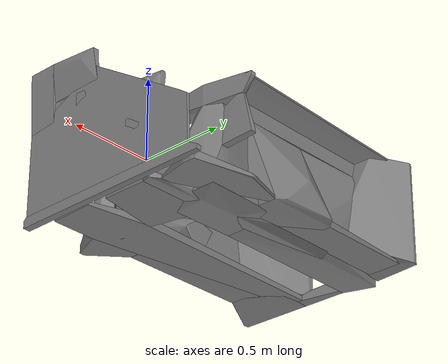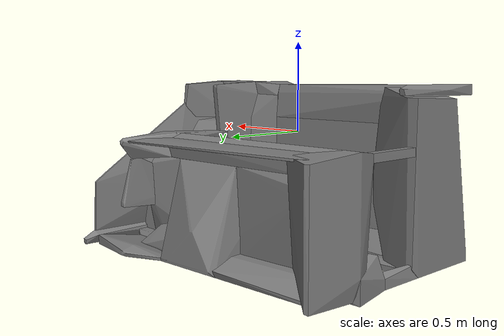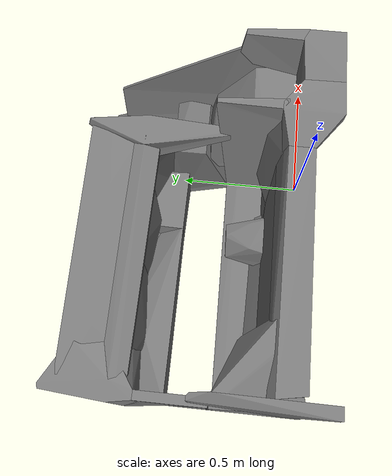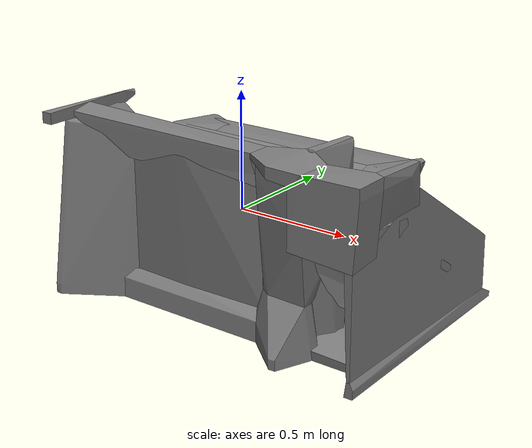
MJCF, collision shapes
<mujoco model="normalized_model">
  <default>
    <default class="visual">
      <geom group="2" type="mesh" contype="0" conaffinity="0"/>
    </default>
    <default class="collision">
      <geom group="3" type="mesh"/>
    </default>
  </default>
  <asset>
    <texture type="2d" name="texture" file="texture.png"/>
    <material name="solid_001_wire" texture="texture" specular="0.117647" shininess="0.5"/>
    <mesh file="normalized_model.obj"/>
    <mesh file="normalized_model_collision_0.obj"/>
    <mesh file="normalized_model_collision_1.obj"/>
    <mesh file="normalized_model_collision_2.obj"/>
    <mesh file="normalized_model_collision_3.obj"/>
    <mesh file="normalized_model_collision_4.obj"/>
    <mesh file="normalized_model_collision_5.obj"/>
    <mesh file="normalized_model_collision_6.obj"/>
    <mesh file="normalized_model_collision_7.obj"/>
    <mesh file="normalized_model_collision_8.obj"/>
    <mesh file="normalized_model_collision_9.obj"/>
    <mesh file="normalized_model_collision_10.obj"/>
    <mesh file="normalized_model_collision_11.obj"/>
    <mesh file="normalized_model_collision_12.obj"/>
    <mesh file="normalized_model_collision_13.obj"/>
    <mesh file="normalized_model_collision_14.obj"/>
    <mesh file="normalized_model_collision_15.obj"/>
    <mesh file="normalized_model_collision_16.obj"/>
    <mesh file="normalized_model_collision_17.obj"/>
    <mesh file="normalized_model_collision_18.obj"/>
    <mesh file="normalized_model_collision_19.obj"/>
    <mesh file="normalized_model_collision_20.obj"/>
    <mesh file="normalized_model_collision_21.obj"/>
    <mesh file="normalized_model_collision_22.obj"/>
    <mesh file="normalized_model_collision_23.obj"/>
    <mesh file="normalized_model_collision_24.obj"/>
    <mesh file="normalized_model_collision_25.obj"/>
    <mesh file="normalized_model_collision_26.obj"/>
    <mesh file="normalized_model_collision_27.obj"/>
    <mesh file="normalized_model_collision_28.obj"/>
    <mesh file="normalized_model_collision_29.obj"/>
    <mesh file="normalized_model_collision_30.obj"/>
    <mesh file="normalized_model_collision_31.obj"/>
  </asset>
  <worldbody>
    <body name="normalized_model">
      <geom material="solid_001_wire" mesh="normalized_model" class="visual"/>
      <geom mesh="normalized_model_collision_0" class="collision"/>
      <geom mesh="normalized_model_collision_1" class="collision"/>
      <geom mesh="normalized_model_collision_2" class="collision"/>
      <geom mesh="normalized_model_collision_3" class="collision"/>
      <geom mesh="normalized_model_collision_4" class="collision"/>
      <geom mesh="normalized_model_collision_5" class="collision"/>
      <geom mesh="normalized_model_collision_6" class="collision"/>
      <geom mesh="normalized_model_collision_7" class="collision"/>
      <geom mesh="normalized_model_collision_8" class="collision"/>
      <geom mesh="normalized_model_collision_9" class="collision"/>
      <geom mesh="normalized_model_collision_10" class="collision"/>
      <geom mesh="normalized_model_collision_11" class="collision"/>
      <geom mesh="normalized_model_collision_12" class="collision"/>
      <geom mesh="normalized_model_collision_13" class="collision"/>
      <geom mesh="normalized_model_collision_14" class="collision"/>
      <geom mesh="normalized_model_collision_15" class="collision"/>
      <geom mesh="normalized_model_collision_16" class="collision"/>
      <geom mesh="normalized_model_collision_17" class="collision"/>
      <geom mesh="normalized_model_collision_18" class="collision"/>
      <geom mesh="normalized_model_collision_19" class="collision"/>
      <geom mesh="normalized_model_collision_20" class="collision"/>
      <geom mesh="normalized_model_collision_21" class="collision"/>
      <geom mesh="normalized_model_collision_22" class="collision"/>
      <geom mesh="normalized_model_collision_23" class="collision"/>
      <geom mesh="normalized_model_collision_24" class="collision"/>
      <geom mesh="normalized_model_collision_25" class="collision"/>
      <geom mesh="normalized_model_collision_26" class="collision"/>
      <geom mesh="normalized_model_collision_27" class="collision"/>
      <geom mesh="normalized_model_collision_28" class="collision"/>
      <geom mesh="normalized_model_collision_29" class="collision"/>
      <geom mesh="normalized_model_collision_30" class="collision"/>
      <geom mesh="normalized_model_collision_31" class="collision"/>
    </body>
  </worldbody>
</mujoco>
